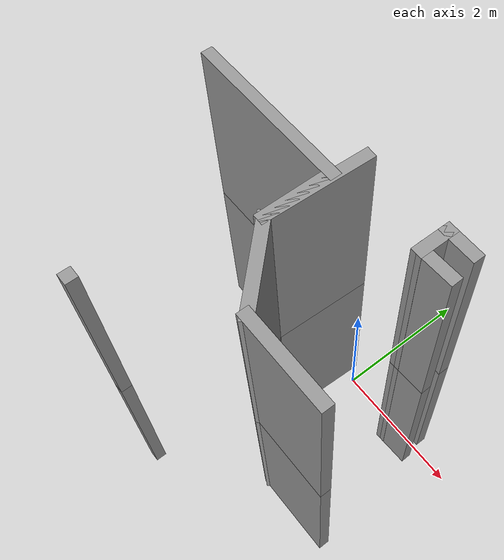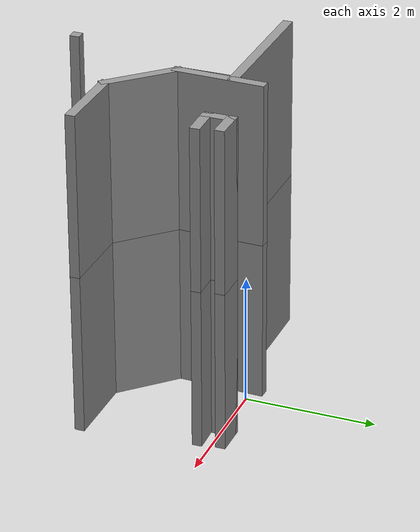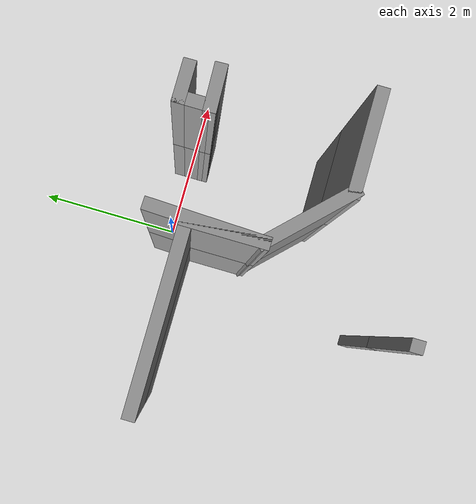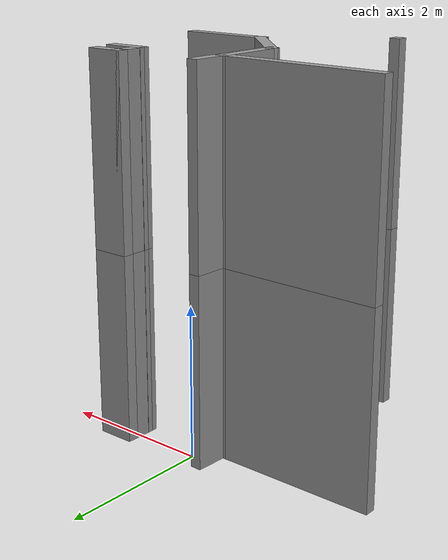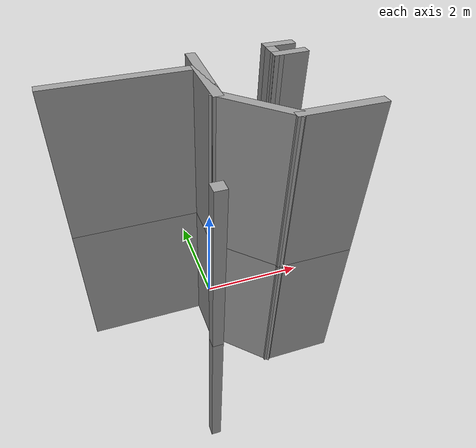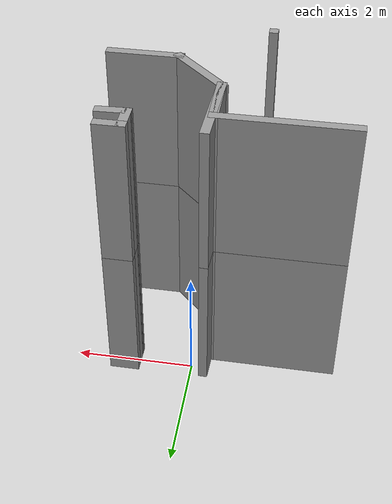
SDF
<sdf version="1.6">
 <model name="2storeyBuilding">
  <pose>-0.004073 0.180036 0 0 -0 0</pose>
  <link name="Wall_13">
   <collision name="Wall_13_Collision">
    <geometry><box><size>1.25 0.15 2.5</size></box></geometry>
    <pose>0 0 1.25 0 -0 0</pose>
   </collision>
   <visual name="Wall_13_Visual">
    <pose>0 0 1.25 0 -0 0</pose>
    <geometry><box><size>1.25 0.15 2.5</size></box></geometry>
    <material>
     <script><uri>file://media/materials/scripts/gazebo.material</uri><name>Gazebo/Grey</name></script>
     <ambient>1 1 1 1</ambient>
    </material>
    <meta><layer>0</layer></meta>
   </visual>
   <pose>1.05282 -2.10282 0 0 -0 3.14159</pose>
  </link>
  <link name="Wall_132">
   <collision name="Wall_132_Collision">
    <geometry><box><size>1.41897 0.15 2.5</size></box></geometry>
    <pose>0 0 1.25 0 -0 0</pose>
   </collision>
   <visual name="Wall_132_Visual">
    <pose>0 0 1.25 0 -0 0</pose>
    <geometry><box><size>1.41897 0.15 2.5</size></box></geometry>
    <material>
     <script><uri>file://media/materials/scripts/gazebo.material</uri><name>Gazebo/Grey</name></script>
     <ambient>1 1 1 1</ambient>
    </material>
    <meta><layer>1</layer></meta>
   </visual>
   <pose>-0.251629 -0.690948 2.5 0 -0 -1.60764</pose>
  </link>
  <link name="Wall_133">
   <collision name="Wall_133_Collision">
    <geometry><box><size>0.5 0.15 2.5</size></box></geometry>
    <pose>0 0 1.25 0 -0 0</pose>
   </collision>
   <visual name="Wall_133_Visual">
    <pose>0 0 1.25 0 -0 0</pose>
    <geometry><box><size>0.5 0.15 2.5</size></box></geometry>
    <material>
     <script><uri>file://media/materials/scripts/gazebo.material</uri><name>Gazebo/Grey</name></script>
     <ambient>1 1 1 1</ambient>
    </material>
    <meta><layer>1</layer></meta>
   </visual>
   <pose>1.14545 -0.037473 2.5 0 -0 3.14159</pose>
  </link>
  <link name="Wall_134">
   <collision name="Wall_134_Collision">
    <geometry><box><size>0.5 0.15 2.5</size></box></geometry>
    <pose>0 0 1.25 0 -0 0</pose>
   </collision>
   <visual name="Wall_134_Visual">
    <pose>0 0 1.25 0 -0 0</pose>
    <geometry><box><size>0.5 0.15 2.5</size></box></geometry>
    <material>
     <script><uri>file://media/materials/scripts/gazebo.material</uri><name>Gazebo/Grey</name></script>
     <ambient>1 1 1 1</ambient>
    </material>
    <meta><layer>1</layer></meta>
   </visual>
   <pose>0.97045 -0.212473 2.5 0 -0 -1.5708</pose>
  </link>
  <link name="Wall_135">
   <collision name="Wall_135_Collision">
    <geometry><box><size>0.554742 0.15 2.5</size></box></geometry>
    <pose>0 0 1.25 0 -0 0</pose>
   </collision>
   <visual name="Wall_135_Visual">
    <pose>0 0 1.25 0 -0 0</pose>
    <geometry><box><size>0.554742 0.15 2.5</size></box></geometry>
    <material>
     <script><uri>file://media/materials/scripts/gazebo.material</uri><name>Gazebo/Grey</name></script>
     <ambient>1 1 1 1</ambient>
    </material>
    <meta><layer>1</layer></meta>
   </visual>
   <pose>1.17273 -0.381237 2.5 0 -0 0.030821</pose>
  </link>
  <link name="Wall_14">
   <collision name="Wall_14_Collision">
    <geometry><box><size>1.25 0.15 2.5</size></box></geometry>
    <pose>0 0 1.25 0 -0 0</pose>
   </collision>
   <visual name="Wall_14_Visual">
    <pose>0 0 1.25 0 -0 0</pose>
    <geometry><box><size>1.25 0.15 2.5</size></box></geometry>
    <material>
     <script><uri>file://media/materials/scripts/gazebo.material</uri><name>Gazebo/Grey</name></script>
     <ambient>1 1 1 1</ambient>
    </material>
    <meta><layer>0</layer></meta>
   </visual>
   <pose>0.113909 -1.71391 0 0 -0 2.35619</pose>
  </link>
  <link name="Wall_15">
   <collision name="Wall_15_Collision">
    <geometry><box><size>1 0.15 2.5</size></box></geometry>
    <pose>0 0 1.25 0 -0 0</pose>
   </collision>
   <visual name="Wall_15_Visual">
    <pose>0 0 1.25 0 -0 0</pose>
    <geometry><box><size>1 0.15 2.5</size></box></geometry>
    <material>
     <script><uri>file://media/materials/scripts/gazebo.material</uri><name>Gazebo/Grey</name></script>
     <ambient>1 1 1 1</ambient>
    </material>
    <meta><layer>0</layer></meta>
   </visual>
   <pose>-0.275 -0.9 0 0 -0 1.5708</pose>
  </link>
  <link name="Wall_18">
   <collision name="Wall_18_Collision">
    <geometry><box><size>2.25 0.15 2.5</size></box></geometry>
    <pose>0 0 1.25 0 -0 0</pose>
   </collision>
   <visual name="Wall_18_Visual">
    <pose>0 0 1.25 0 -0 0</pose>
    <geometry><box><size>2.25 0.15 2.5</size></box></geometry>
    <material>
     <script><uri>file://media/materials/scripts/gazebo.material</uri><name>Gazebo/Grey</name></script>
     <ambient>1 1 1 1</ambient>
    </material>
    <meta><layer>0</layer></meta>
   </visual>
   <pose>-1.325 -0.475 0 0 -0 3.14159</pose>
  </link>
  <link name="Wall_4">
   <collision name="Wall_4_Collision">
    <geometry><box><size>0.15 0.15 2.5</size></box></geometry>
    <pose>0 0 1.25 0 -0 0</pose>
   </collision>
   <visual name="Wall_4_Visual">
    <pose>0 0 1.25 0 -0 0</pose>
    <geometry><box><size>0.15 0.15 2.5</size></box></geometry>
    <material>
     <script><uri>file://media/materials/scripts/gazebo.material</uri><name>Gazebo/Grey</name></script>
     <ambient>1 1 1 1</ambient>
    </material>
    <meta><layer>0</layer></meta>
   </visual>
   <pose>-0.88059 -3.15694 0 0 -0 0</pose>
  </link>
  <link name="Wall_73">
   <collision name="Wall_73_Collision">
    <geometry><box><size>1.41897 0.15 2.5</size></box></geometry>
    <pose>0 0 1.25 0 -0 0</pose>
   </collision>
   <visual name="Wall_73_Visual">
    <pose>0 0 1.25 0 -0 0</pose>
    <geometry><box><size>1.41897 0.15 2.5</size></box></geometry>
    <material>
     <script><uri>file://media/materials/scripts/gazebo.material</uri><name>Gazebo/Grey</name></script>
     <ambient>1 1 1 1</ambient>
    </material>
    <meta><layer>0</layer></meta>
   </visual>
   <pose>-0.251629 -0.690948 0 0 -0 -1.60764</pose>
  </link>
  <link name="Wall_75">
   <collision name="Wall_75_Collision">
    <geometry><box><size>0.5 0.15 2.5</size></box></geometry>
    <pose>0 0 1.25 0 -0 0</pose>
   </collision>
   <visual name="Wall_75_Visual">
    <pose>0 0 1.25 0 -0 0</pose>
    <geometry><box><size>0.5 0.15 2.5</size></box></geometry>
    <material>
     <script><uri>file://media/materials/scripts/gazebo.material</uri><name>Gazebo/Grey</name></script>
     <ambient>1 1 1 1</ambient>
    </material>
    <meta><layer>0</layer></meta>
   </visual>
   <pose>1.14545 -0.037473 0 0 -0 3.14159</pose>
  </link>
  <link name="Wall_76">
   <collision name="Wall_76_Collision">
    <geometry><box><size>0.5 0.15 2.5</size></box></geometry>
    <pose>0 0 1.25 0 -0 0</pose>
   </collision>
   <visual name="Wall_76_Visual">
    <pose>0 0 1.25 0 -0 0</pose>
    <geometry><box><size>0.5 0.15 2.5</size></box></geometry>
    <material>
     <script><uri>file://media/materials/scripts/gazebo.material</uri><name>Gazebo/Grey</name></script>
     <ambient>1 1 1 1</ambient>
    </material>
    <meta><layer>0</layer></meta>
   </visual>
   <pose>0.97045 -0.212473 0 0 -0 -1.5708</pose>
  </link>
  <link name="Wall_77">
   <collision name="Wall_77_Collision">
    <geometry><box><size>0.554742 0.15 2.5</size></box></geometry>
    <pose>0 0 1.25 0 -0 0</pose>
   </collision>
   <visual name="Wall_77_Visual">
    <pose>0 0 1.25 0 -0 0</pose>
    <geometry><box><size>0.554742 0.15 2.5</size></box></geometry>
    <material>
     <script><uri>file://media/materials/scripts/gazebo.material</uri><name>Gazebo/Grey</name></script>
     <ambient>1 1 1 1</ambient>
    </material>
    <meta><layer>0</layer></meta>
   </visual>
   <pose>1.17273 -0.381237 0 0 -0 0.030821</pose>
  </link>
  <link name="Wall_85">
   <collision name="Wall_85_Collision">
    <geometry><box><size>0.15 0.15 2.5</size></box></geometry>
    <pose>0 0 1.25 0 -0 0</pose>
   </collision>
   <visual name="Wall_85_Visual">
    <pose>0 0 1.25 0 -0 0</pose>
    <geometry><box><size>0.15 0.15 2.5</size></box></geometry>
    <material>
     <script><uri>file://media/materials/scripts/gazebo.material</uri><name>Gazebo/Grey</name></script>
     <ambient>1 1 1 1</ambient>
    </material>
    <meta><layer>1</layer></meta>
   </visual>
   <pose>-0.88059 -3.15694 2.5 0 -0 0</pose>
  </link>
  <link name="Wall_92">
   <collision name="Wall_92_Collision">
    <geometry><box><size>1.25 0.15 2.5</size></box></geometry>
    <pose>0 0 1.25 0 -0 0</pose>
   </collision>
   <visual name="Wall_92_Visual">
    <pose>0 0 1.25 0 -0 0</pose>
    <geometry><box><size>1.25 0.15 2.5</size></box></geometry>
    <material>
     <script><uri>file://media/materials/scripts/gazebo.material</uri><name>Gazebo/Grey</name></script>
     <ambient>1 1 1 1</ambient>
    </material>
    <meta><layer>1</layer></meta>
   </visual>
   <pose>1.05282 -2.10282 2.5 0 -0 3.14159</pose>
  </link>
  <link name="Wall_93">
   <collision name="Wall_93_Collision">
    <geometry><box><size>1.25 0.15 2.5</size></box></geometry>
    <pose>0 0 1.25 0 -0 0</pose>
   </collision>
   <visual name="Wall_93_Visual">
    <pose>0 0 1.25 0 -0 0</pose>
    <geometry><box><size>1.25 0.15 2.5</size></box></geometry>
    <material>
     <script><uri>file://media/materials/scripts/gazebo.material</uri><name>Gazebo/Grey</name></script>
     <ambient>1 1 1 1</ambient>
    </material>
    <meta><layer>1</layer></meta>
   </visual>
   <pose>0.113909 -1.71391 2.5 0 -0 2.35619</pose>
  </link>
  <link name="Wall_94">
   <collision name="Wall_94_Collision">
    <geometry><box><size>1 0.15 2.5</size></box></geometry>
    <pose>0 0 1.25 0 -0 0</pose>
   </collision>
   <visual name="Wall_94_Visual">
    <pose>0 0 1.25 0 -0 0</pose>
    <geometry><box><size>1 0.15 2.5</size></box></geometry>
    <material>
     <script><uri>file://media/materials/scripts/gazebo.material</uri><name>Gazebo/Grey</name></script>
     <ambient>1 1 1 1</ambient>
    </material>
    <meta><layer>1</layer></meta>
   </visual>
   <pose>-0.275 -0.9 2.5 0 -0 1.5708</pose>
  </link>
  <link name="Wall_95">
   <collision name="Wall_95_Collision">
    <geometry><box><size>2.25 0.15 2.5</size></box></geometry>
    <pose>0 0 1.25 0 -0 0</pose>
   </collision>
   <visual name="Wall_95_Visual">
    <pose>0 0 1.25 0 -0 0</pose>
    <geometry><box><size>2.25 0.15 2.5</size></box></geometry>
    <material>
     <script><uri>file://media/materials/scripts/gazebo.material</uri><name>Gazebo/Grey</name></script>
     <ambient>1 1 1 1</ambient>
    </material>
    <meta><layer>1</layer></meta>
   </visual>
   <pose>-1.325 -0.475 2.5 0 -0 3.14159</pose>
  </link>
  <static>1</static>
 </model>
</sdf>
